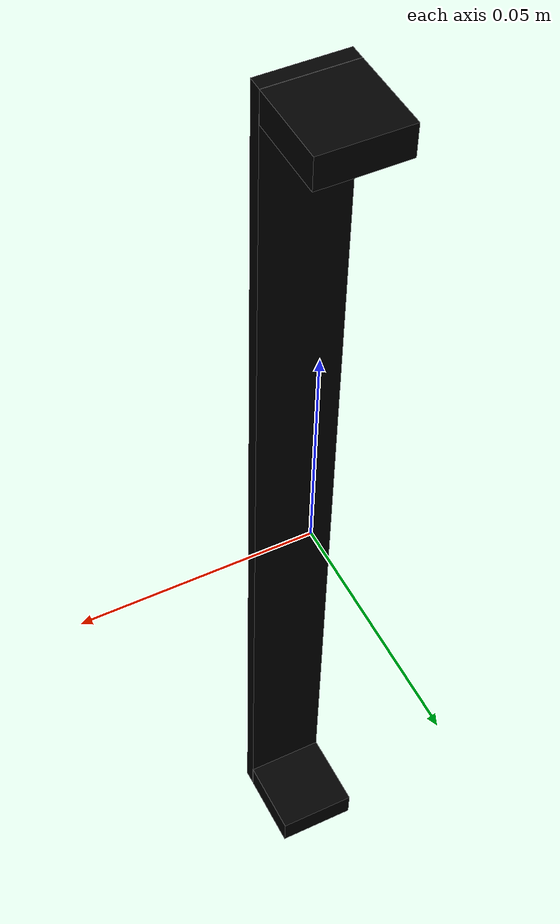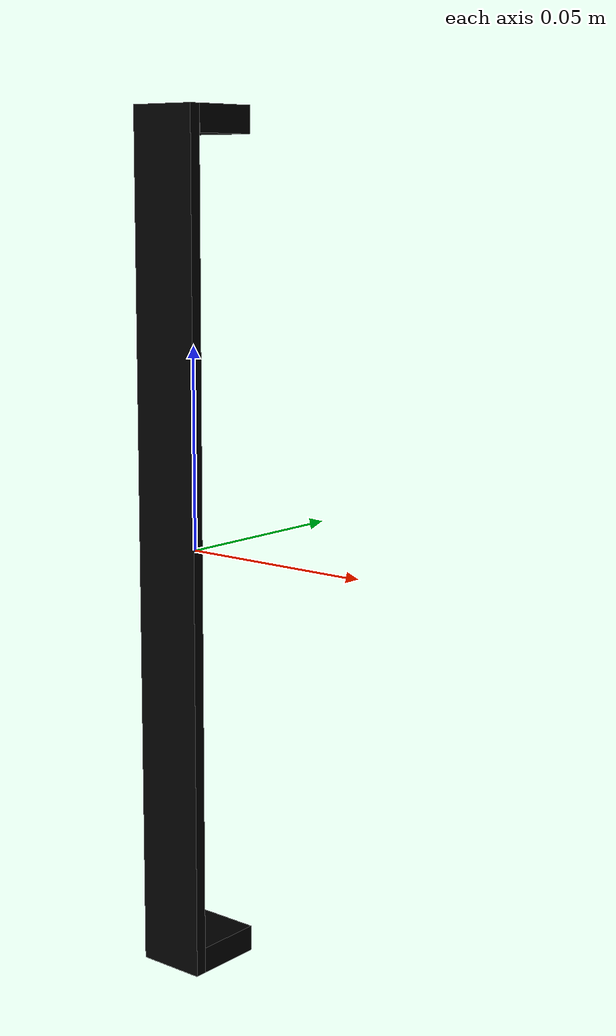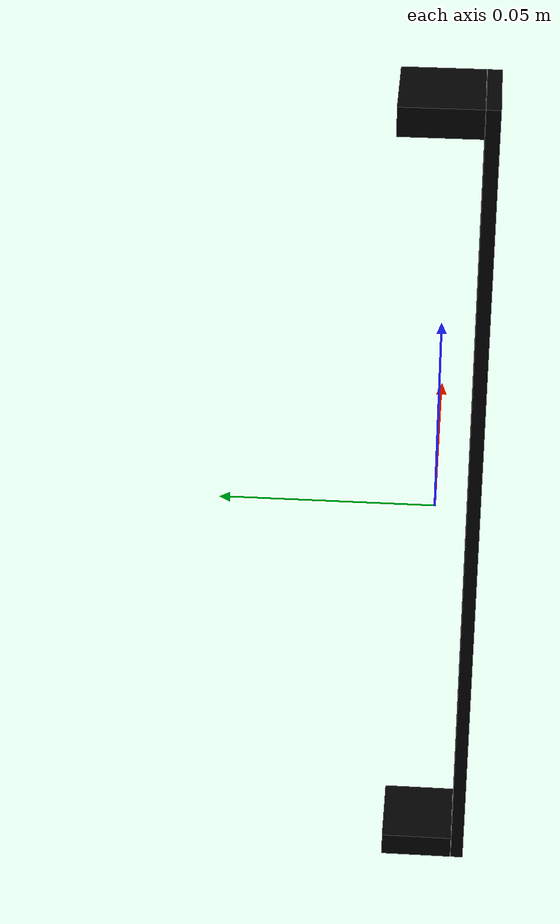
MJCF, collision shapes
<?xml version="1.0" ?>
<mujoco model="model">
    <compiler angle="radian"/>
    <asset>
        <mesh file="visuals/CabinetHandle025.obj" name="mesh"/>
        <texture file="visuals/T_BC001.png" name="tex" type="2d"/>
        <material name="mat" rgba="1 1 1 1.0" texture="tex" shininess="0.5" specular="1"/>
    </asset>
    <default>
        <default class="visual">
            <geom conaffinity="0" contype="0" group="1" type="mesh"/>
        </default>
        <default class="collision">
            <geom group="0" rgba="0 0 0 0"/>
        </default>
        <default class="spawn">
            <geom group="0" rgba="0 0 0 0" contype="0" conaffinity="0"/>
            <site group="0" rgba="0 0 0 0"/>
        </default>
    </default>
    <worldbody>
        <body>
            <body name="object">
                <geom mesh="mesh" type="mesh" solimp="0.998 0.998 0.001" solref="0.001 1" density="100" friction="0.95 0.3 0.1" class="visual" material="mat"/>
                <geom class="collision" type="box" pos="0.0 -0.008829286321997643 0.0" size="0.008913720026612282 0.0015267652925103903 0.10607448220252991" quat="1.0 0.0 0.0 0.0"/>
                <geom class="collision" type="box" pos="0.0 0.001576766837388277 0.10278105735778809" size="0.008913720026612282 0.008779286406934261 0.003293429734185338" quat="1.0 0.0 0.0 0.0"/>
                <geom class="collision" type="box" pos="0.0 0.0015767670702189207 -0.10278105735778809" size="0.008913720026612282 0.008779286406934261 0.003293433925136924" quat="1.0 0.0 0.0 0.0" name="handle_connector"/>
            </body>
        </body>
    </worldbody>
    <actuator/>
</mujoco>
